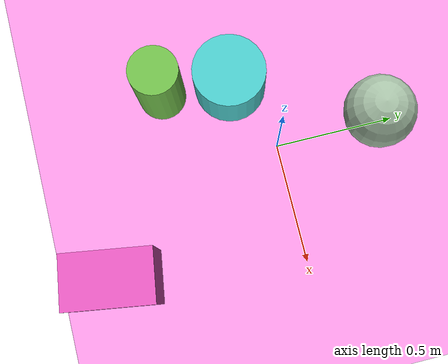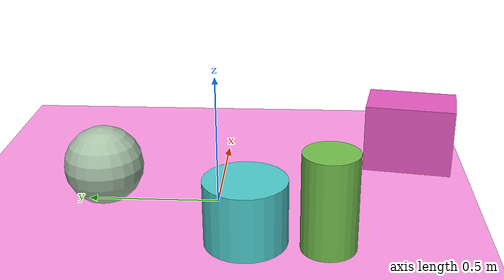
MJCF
<mujoco>
   <asset>
<texture type="skybox" builtin="gradient" rgb1="0.8 0.2 0.1" rgb2="0.1 0.8 0.1" width="256" height="256"/>
<texture name="checker_0" builtin="checker" rgb1="0.9 0.2 0.7" rgb2="0.9 0.5 0.8" width="200" height="200"/>
<texture name="checker_1" builtin="checker" rgb1="0.4 0.7 1.0" rgb2="0.9 0.8 0.3" width="200" height="200"/>
<texture name="flat_2" builtin="flat" rgb1="0.3 0.8 0.8" rgb2="0.3 0.8 0.8"  width="200" height="200"/>
<texture name="gradient_3" builtin="gradient" rgb1="0.4 0.5 0.1" rgb2="0.5 1.0 0.5" width="200" height="200"/><material name="checker_0_mat" reflectance="0" texrepeat="2 2" texture="checker_0" texuniform="false" />
<material name="checker_1_mat" reflectance="0" texrepeat="8 8" texture="checker_1" texuniform="false" />
<material name="flat_2_mat" reflectance="0" texture="flat_2" texuniform="true"/>
<material name="gradient_3_mat" reflectance="0" texture="gradient_3" texuniform="true"/>
   </asset>

   <worldbody>
      <light diffuse=".9 .9 .9" pos="0 0 3" dir="0 0 -1"/>
     <geom type="plane" size="1 1 0.1" rgba="1.0 0.6 0.9 1"/>
<geom type="box" pos="0.39 -0.77 0.14" size="0.18 0.11 0.14" material="checker_0_mat" euler="0 0 81" />
<geom type="sphere" pos="-0.01 0.43 0.15" size="0.15 0.15 0.15" material="checker_1_mat" euler="0 0 7" />
<geom type="cylinder" pos="-0.3 -0.13 0.12" size="0.15 0.12 0.12" material="flat_2_mat" euler="0 0 14" />
<geom type="cylinder" pos="-0.33 -0.42 0.18" size="0.1 0.18 0.18" material="gradient_3_mat" euler="0 0 30" /><camera euler="60 0 180" fovy="60" name="camera1" pos="-0.2 -1.5 1"></camera>   </worldbody>
</mujoco>
